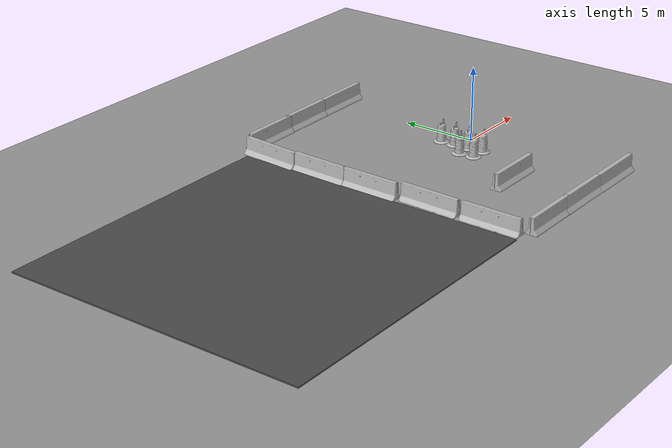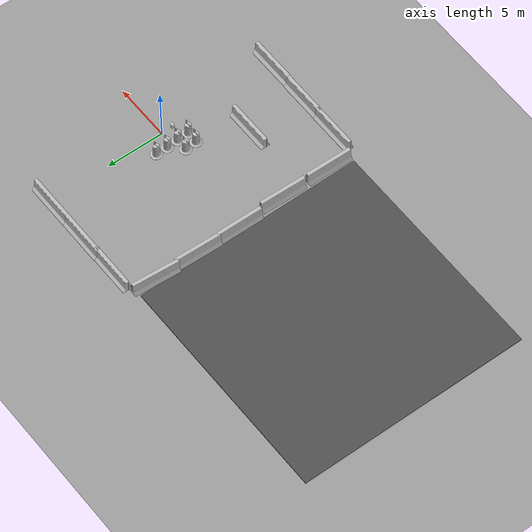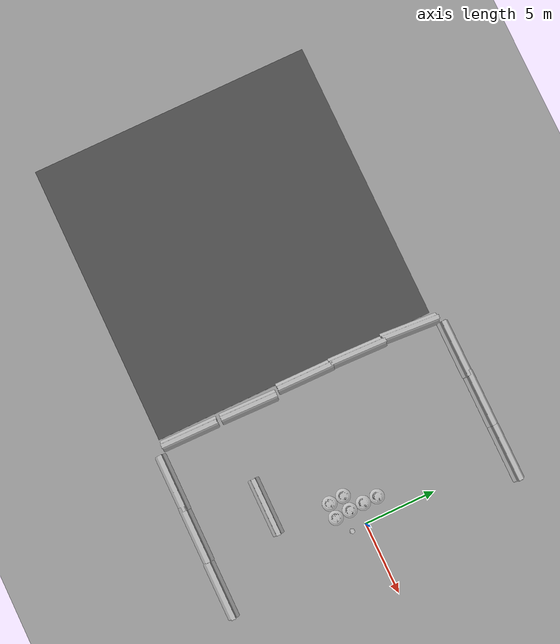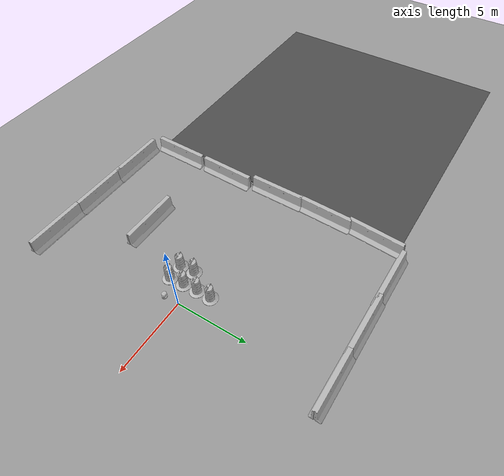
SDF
<sdf version="1.4">
 <world name="default">
  <model name="mobile_base">
   <link name="base_footprint">
    <inertial>
     <pose>-0.00949586 1.25983e-05 0.135573 0 -0 0</pose>
     <mass>4.9213</mass>
     <inertia>
      <ixx>0.142129</ixx>
      <ixy>-4.09257e-06</ixy>
      <ixz>0.0154899</ixz>
      <iyy>0.140784</iyy>
      <iyz>6.52071e-06</iyz>
      <izz>0.0801071</izz>
     </inertia>
    </inertial>
    <collision name="base_footprint_collision_base_link">
     <pose>0 0 0.06969 0 -0 0</pose>
     <geometry><cylinder><length>0.10938</length><radius>0.178</radius></cylinder></geometry>
     <surface><friction><ode><mu>0.3</mu><mu2>0.3</mu2></ode></friction></surface>
    </collision>
    <collision name="base_footprint_collision_camera_link">
     <pose>-0.118 0 0.2812 0 -0 0</pose>
     <geometry><box><size>0.07271 0.27794 0.073</size></box></geometry>
    </collision>
    <collision name="base_footprint_collision_caster_back_link">
     <pose>-0.135 0 0.0192 -1.5708 0 0</pose>
     <geometry><cylinder><length>0.0176</length><radius>0.017</radius></cylinder></geometry>
     <surface>
      <contact><ode><kp>1e+06</kp><kd>100</kd><max_vel>1</max_vel><min_depth>0.001</min_depth></ode></contact>
      <friction><ode><mu>0</mu><mu2>0</mu2></ode></friction>
     </surface>
    </collision>
    <collision name="base_footprint_collision_caster_front_link">
     <pose>0.115 0 0.0172 -1.5708 0 0</pose>
     <geometry><cylinder><length>0.0176</length><radius>0.017</radius></cylinder></geometry>
     <surface>
      <contact><ode><kp>1e+06</kp><kd>100</kd><max_vel>1</max_vel><min_depth>0.001</min_depth></ode></contact>
      <friction><ode><mu>0</mu><mu2>0</mu2></ode></friction>
     </surface>
    </collision>
    <collision name="base_footprint_collision_plate_bottom_link">
     <pose>0 0 0.1408 0 -0 0</pose>
     <geometry><cylinder><length>0.006</length><radius>0.17</radius></cylinder></geometry>
    </collision>
    <collision name="base_footprint_collision_plate_middle_link">
     <pose>0 0 0.1976 0 -0 0</pose>
     <geometry><cylinder><length>0.006</length><radius>0.17</radius></cylinder></geometry>
    </collision>
    <collision name="base_footprint_collision_plate_top_link">
     <pose>0 0 0.4068 0 -0 0</pose>
     <geometry><cylinder><length>0.006</length><radius>0.17</radius></cylinder></geometry>
    </collision>
    <collision name="base_footprint_collision_pole_bottom_0_link">
     <pose>0.12 0.082 0.113 0 -0 0</pose>
     <geometry><cylinder><length>0.0492</length><radius>0.006</radius></cylinder></geometry>
    </collision>
    <collision name="base_footprint_collision_pole_bottom_1_link">
     <pose>0.055 0.12 0.113 0 -0 0</pose>
     <geometry><cylinder><length>0.0492</length><radius>0.006</radius></cylinder></geometry>
    </collision>
    <collision name="base_footprint_collision_pole_bottom_2_link">
     <pose>-0.055 0.12 0.113 0 -0 0</pose>
     <geometry><cylinder><length>0.0492</length><radius>0.006</radius></cylinder></geometry>
    </collision>
    <collision name="base_footprint_collision_pole_bottom_3_link">
     <pose>0.12 -0.082 0.113 0 -0 0</pose>
     <geometry><cylinder><length>0.0492</length><radius>0.006</radius></cylinder></geometry>
    </collision>
    <collision name="base_footprint_collision_pole_bottom_4_link">
     <pose>0.055 -0.12 0.113 0 -0 0</pose>
     <geometry><cylinder><length>0.0492</length><radius>0.006</radius></cylinder></geometry>
    </collision>
    <collision name="base_footprint_collision_pole_bottom_5_link">
     <pose>-0.055 -0.12 0.113 0 -0 0</pose>
     <geometry><cylinder><length>0.0492</length><radius>0.006</radius></cylinder></geometry>
    </collision>
    <collision name="base_footprint_collision_pole_kinect_0_link">
     <pose>-0.1024 0.098 0.2474 0 -0 0</pose>
     <geometry><cylinder><length>0.0936</length><radius>0.006</radius></cylinder></geometry>
    </collision>
    <collision name="base_footprint_collision_pole_kinect_1_link">
     <pose>-0.1024 -0.098 0.2474 0 -0 0</pose>
     <geometry><cylinder><length>0.0936</length><radius>0.006</radius></cylinder></geometry>
    </collision>
    <collision name="base_footprint_collision_pole_middle_0_link">
     <pose>0.0381 0.1505 0.1742 0 -0 0</pose>
     <geometry><cylinder><length>0.0608</length><radius>0.006</radius></cylinder></geometry>
    </collision>
    <collision name="base_footprint_collision_pole_middle_1_link">
     <pose>0.0381 -0.1505 0.1742 0 -0 0</pose>
     <geometry><cylinder><length>0.0608</length><radius>0.006</radius></cylinder></geometry>
    </collision>
    <collision name="base_footprint_collision_pole_middle_2_link">
     <pose>-0.0381 0.1505 0.1742 0 -0 0</pose>
     <geometry><cylinder><length>0.0608</length><radius>0.006</radius></cylinder></geometry>
    </collision>
    <collision name="base_footprint_collision_pole_middle_3_link">
     <pose>-0.0381 -0.1505 0.1742 0 -0 0</pose>
     <geometry><cylinder><length>0.0608</length><radius>0.006</radius></cylinder></geometry>
    </collision>
    <collision name="base_footprint_collision_pole_top_0_link">
     <pose>0.0381 0.1505 0.3022 0 -0 0</pose>
     <geometry><cylinder><length>0.2032</length><radius>0.006</radius></cylinder></geometry>
    </collision>
    <collision name="base_footprint_collision_pole_top_1_link">
     <pose>0.0381 -0.1505 0.3022 0 -0 0</pose>
     <geometry><cylinder><length>0.2032</length><radius>0.006</radius></cylinder></geometry>
    </collision>
    <collision name="base_footprint_collision_pole_top_2_link">
     <pose>-0.0381 0.1505 0.3022 0 -0 0</pose>
     <geometry><cylinder><length>0.2032</length><radius>0.006</radius></cylinder></geometry>
    </collision>
    <collision name="base_footprint_collision_pole_top_3_link">
     <pose>-0.0381 -0.1505 0.3022 0 -0 0</pose>
     <geometry><cylinder><length>0.2032</length><radius>0.006</radius></cylinder></geometry>
    </collision>
    <visual name="base_footprint_visual_base_link">
     <pose>0.001 0 0.06219 0 -0 0</pose>
     <geometry>
      <mesh><scale>1 1 1</scale><uri>/opt/ros/indigo/share/kobuki_description/meshes/main_body.dae</uri></mesh>
     </geometry>
    </visual>
    <visual name="base_footprint_visual_camera_link">
     <pose>-0.118 0 0.2812 0 -0 1.5708</pose>
     <geometry>
      <mesh>
       <scale>1 1 1</scale>
       <uri>/opt/ros/indigo/share/turtlebot_description/meshes/sensors/kinect.dae</uri>
      </mesh>
     </geometry>
    </visual>
    <visual name="base_footprint_visual_plate_bottom_link">
     <pose>0.02364 0 0.1408 0 -0 0</pose>
     <geometry>
      <mesh>
       <scale>1 1 1</scale>
       <uri>/opt/ros/indigo/share/turtlebot_description/meshes/stacks/hexagons/plate_bottom.dae</uri>
      </mesh>
     </geometry>
    </visual>
    <visual name="base_footprint_visual_plate_middle_link">
     <pose>-0.01364 0 0.1976 0 -0 0</pose>
     <geometry>
      <mesh>
       <scale>1 1 1</scale>
       <uri>/opt/ros/indigo/share/turtlebot_description/meshes/stacks/hexagons/plate_middle.dae</uri>
      </mesh>
     </geometry>
    </visual>
    <visual name="base_footprint_visual_plate_top_link">
     <pose>-0.01364 0 0.4068 0 -0 0</pose>
     <geometry>
      <mesh>
       <scale>1 1 1</scale>
       <uri>/opt/ros/indigo/share/turtlebot_description/meshes/stacks/hexagons/plate_top.dae</uri>
      </mesh>
     </geometry>
    </visual>
    <visual name="base_footprint_visual_pole_bottom_0_link">
     <pose>0.12 0.082 0.113 0 -0 0</pose>
     <geometry>
      <mesh>
       <scale>1 1 1</scale>
       <uri>/opt/ros/indigo/share/turtlebot_description/meshes/stacks/hexagons/pole_bottom.dae</uri>
      </mesh>
     </geometry>
    </visual>
    <visual name="base_footprint_visual_pole_bottom_1_link">
     <pose>0.055 0.12 0.113 0 -0 0</pose>
     <geometry>
      <mesh>
       <scale>1 1 1</scale>
       <uri>/opt/ros/indigo/share/turtlebot_description/meshes/stacks/hexagons/pole_bottom.dae</uri>
      </mesh>
     </geometry>
    </visual>
    <visual name="base_footprint_visual_pole_bottom_2_link">
     <pose>-0.055 0.12 0.113 0 -0 0</pose>
     <geometry>
      <mesh>
       <scale>1 1 1</scale>
       <uri>/opt/ros/indigo/share/turtlebot_description/meshes/stacks/hexagons/pole_bottom.dae</uri>
      </mesh>
     </geometry>
    </visual>
    <visual name="base_footprint_visual_pole_bottom_3_link">
     <pose>0.12 -0.082 0.113 0 -0 0</pose>
     <geometry>
      <mesh>
       <scale>1 1 1</scale>
       <uri>/opt/ros/indigo/share/turtlebot_description/meshes/stacks/hexagons/pole_bottom.dae</uri>
      </mesh>
     </geometry>
    </visual>
    <visual name="base_footprint_visual_pole_bottom_4_link">
     <pose>0.055 -0.12 0.113 0 -0 0</pose>
     <geometry>
      <mesh>
       <scale>1 1 1</scale>
       <uri>/opt/ros/indigo/share/turtlebot_description/meshes/stacks/hexagons/pole_bottom.dae</uri>
      </mesh>
     </geometry>
    </visual>
    <visual name="base_footprint_visual_pole_bottom_5_link">
     <pose>-0.055 -0.12 0.113 0 -0 0</pose>
     <geometry>
      <mesh>
       <scale>1 1 1</scale>
       <uri>/opt/ros/indigo/share/turtlebot_description/meshes/stacks/hexagons/pole_bottom.dae</uri>
      </mesh>
     </geometry>
    </visual>
    <visual name="base_footprint_visual_pole_kinect_0_link">
     <pose>-0.1024 0.098 0.2374 0 -0 0</pose>
     <geometry>
      <mesh>
       <scale>1 1 1</scale>
       <uri>/opt/ros/indigo/share/turtlebot_description/meshes/sensors/sensor_pole.dae</uri>
      </mesh>
     </geometry>
    </visual>
    <visual name="base_footprint_visual_pole_kinect_1_link">
     <pose>-0.1024 -0.098 0.2374 0 -0 0</pose>
     <geometry>
      <mesh>
       <scale>1 1 1</scale>
       <uri>/opt/ros/indigo/share/turtlebot_description/meshes/sensors/sensor_pole.dae</uri>
      </mesh>
     </geometry>
    </visual>
    <visual name="base_footprint_visual_pole_middle_0_link">
     <pose>0.0381 0.1505 0.1742 3.14159 -2.06823e-13 3.14159</pose>
     <geometry>
      <mesh>
       <scale>1 1 1</scale>
       <uri>/opt/ros/indigo/share/turtlebot_description/meshes/stacks/hexagons/pole_middle.dae</uri>
      </mesh>
     </geometry>
    </visual>
    <visual name="base_footprint_visual_pole_middle_1_link">
     <pose>0.0381 -0.1505 0.1742 3.14159 -2.06823e-13 3.14159</pose>
     <geometry>
      <mesh>
       <scale>1 1 1</scale>
       <uri>/opt/ros/indigo/share/turtlebot_description/meshes/stacks/hexagons/pole_middle.dae</uri>
      </mesh>
     </geometry>
    </visual>
    <visual name="base_footprint_visual_pole_middle_2_link">
     <pose>-0.0381 0.1505 0.1742 3.14159 -2.06823e-13 3.14159</pose>
     <geometry>
      <mesh>
       <scale>1 1 1</scale>
       <uri>/opt/ros/indigo/share/turtlebot_description/meshes/stacks/hexagons/pole_middle.dae</uri>
      </mesh>
     </geometry>
    </visual>
    <visual name="base_footprint_visual_pole_middle_3_link">
     <pose>-0.0381 -0.1505 0.1742 3.14159 -2.06823e-13 3.14159</pose>
     <geometry>
      <mesh>
       <scale>1 1 1</scale>
       <uri>/opt/ros/indigo/share/turtlebot_description/meshes/stacks/hexagons/pole_middle.dae</uri>
      </mesh>
     </geometry>
    </visual>
    <visual name="base_footprint_visual_pole_top_0_link">
     <pose>0.0381 0.1505 0.3022 0 -0 0</pose>
     <geometry>
      <mesh>
       <scale>1 1 1</scale>
       <uri>/opt/ros/indigo/share/turtlebot_description/meshes/stacks/hexagons/pole_top.dae</uri>
      </mesh>
     </geometry>
    </visual>
    <visual name="base_footprint_visual_pole_top_1_link">
     <pose>0.0381 -0.1505 0.3022 0 -0 0</pose>
     <geometry>
      <mesh>
       <scale>1 1 1</scale>
       <uri>/opt/ros/indigo/share/turtlebot_description/meshes/stacks/hexagons/pole_top.dae</uri>
      </mesh>
     </geometry>
    </visual>
    <visual name="base_footprint_visual_pole_top_2_link">
     <pose>-0.0381 0.1505 0.3022 0 -0 0</pose>
     <geometry>
      <mesh>
       <scale>1 1 1</scale>
       <uri>/opt/ros/indigo/share/turtlebot_description/meshes/stacks/hexagons/pole_top.dae</uri>
      </mesh>
     </geometry>
    </visual>
    <visual name="base_footprint_visual_pole_top_3_link">
     <pose>-0.0381 -0.1505 0.3022 0 -0 0</pose>
     <geometry>
      <mesh>
       <scale>1 1 1</scale>
       <uri>/opt/ros/indigo/share/turtlebot_description/meshes/stacks/hexagons/pole_top.dae</uri>
      </mesh>
     </geometry>
    </visual>
    <velocity_decay><linear>0</linear><angular>0</angular></velocity_decay>
    <sensor name="bumpers" type="contact">
     <always_on>1</always_on>
     <update_rate>50</update_rate>
     <visualize>1</visualize>
     <contact><collision>base_footprint_collision_base_link</collision><topic>__default_topic__</topic></contact>
     <pose>0 0 0.0102 0 -0 0</pose>
    </sensor>
    <velocity_decay><linear>0</linear><angular>0</angular></velocity_decay>
    <sensor name="camera" type="depth">
     <always_on>1</always_on>
     <update_rate>20</update_rate>
     <camera name="__default__">
      <horizontal_fov>1.0472</horizontal_fov>
      <image><format>R8G8B8</format><width>640</width><height>480</height></image>
      <clip><near>0.05</near><far>8</far></clip>
     </camera>
     <plugin name="kinect_camera_controller" filename="libgazebo_ros_openni_kinect.so">
      <cameraName>camera</cameraName>
      <alwaysOn>true</alwaysOn>
      <updateRate>10</updateRate>
      <imageTopicName>rgb/image_raw</imageTopicName>
      <depthImageTopicName>depth/image_raw</depthImageTopicName>
      <pointCloudTopicName>depth/points</pointCloudTopicName>
      <cameraInfoTopicName>rgb/camera_info</cameraInfoTopicName>
      <depthImageCameraInfoTopicName>depth/camera_info</depthImageCameraInfoTopicName>
      <frameName>camera_depth_optical_frame</frameName>
      <baseline>0.1</baseline>
      <distortion_k1>0.0</distortion_k1>
      <distortion_k2>0.0</distortion_k2>
      <distortion_k3>0.0</distortion_k3>
      <distortion_t1>0.0</distortion_t1>
      <distortion_t2>0.0</distortion_t2>
      <pointCloudCutoff>0.4</pointCloudCutoff>
      <robotNamespace>/</robotNamespace>
     </plugin>
     <pose>-0.118 0 0.2812 0 -0 0</pose>
    </sensor>
    <velocity_decay><linear>0</linear><angular>0</angular></velocity_decay>
    <velocity_decay><linear>0</linear><angular>0</angular></velocity_decay>
    <velocity_decay><linear>0</linear><angular>0</angular></velocity_decay>
    <sensor name="cliff_sensor_front" type="ray">
     <always_on>1</always_on>
     <update_rate>50</update_rate>
     <visualize>1</visualize>
     <ray>
      <scan>
       <horizontal>
        <samples>50</samples>
        <resolution>1</resolution>
        <min_angle>-0.0436</min_angle>
        <max_angle>0.0436</max_angle>
       </horizontal>
      </scan>
      <range><min>0.01</min><max>0.15</max><resolution>1</resolution></range>
     </ray>
     <pose>0.156 0 0.0316 3.14159 1.57079 3.14159</pose>
    </sensor>
    <velocity_decay><linear>0</linear><angular>0</angular></velocity_decay>
    <sensor name="cliff_sensor_left" type="ray">
     <always_on>1</always_on>
     <update_rate>50</update_rate>
     <visualize>1</visualize>
     <ray>
      <scan>
       <horizontal>
        <samples>50</samples>
        <resolution>1</resolution>
        <min_angle>-0.0436</min_angle>
        <max_angle>0.0436</max_angle>
       </horizontal>
      </scan>
      <range><min>0.01</min><max>0.15</max><resolution>1</resolution></range>
     </ray>
     <pose>0.08734 0.13601 0.0316 3.14159 1.57079 3.14159</pose>
    </sensor>
    <velocity_decay><linear>0</linear><angular>0</angular></velocity_decay>
    <sensor name="cliff_sensor_right" type="ray">
     <always_on>1</always_on>
     <update_rate>50</update_rate>
     <visualize>1</visualize>
     <ray>
      <scan>
       <horizontal>
        <samples>50</samples>
        <resolution>1</resolution>
        <min_angle>-0.0436</min_angle>
        <max_angle>0.0436</max_angle>
       </horizontal>
      </scan>
      <range><min>0.01</min><max>0.15</max><resolution>1</resolution></range>
     </ray>
     <pose>0.085 -0.13601 0.0316 3.14159 1.57079 3.14159</pose>
    </sensor>
    <velocity_decay><linear>0</linear><angular>0</angular></velocity_decay>
    <sensor name="imu" type="imu">
     <always_on>1</always_on>
     <update_rate>50</update_rate>
     <visualize>0</visualize>
     <imu>
      <noise>
       <type>gaussian</type>
       <rate><mean>0</mean><stddev>1.96e-06</stddev><bias_mean>0</bias_mean><bias_stddev>0</bias_stddev></rate>
       <accel><mean>0</mean><stddev>0.017</stddev><bias_mean>0.1</bias_mean><bias_stddev>0.001</bias_stddev></accel>
      </noise>
     </imu>
     <pose>0.056 0.062 0.0304 0 -0 0</pose>
    </sensor>
   </link>
   <link name="wheel_left_link">
    <pose>0 0.115 0.0352 -1.5708 0 0</pose>
    <inertial>
     <mass>0.01</mass>
     <inertia><ixx>0.001</ixx><ixy>0</ixy><ixz>0</ixz><iyy>0.001</iyy><iyz>0</iyz><izz>0.001</izz></inertia>
    </inertial>
    <collision name="wheel_left_link_collision">
     <geometry><cylinder><length>0.0206</length><radius>0.0352</radius></cylinder></geometry>
     <surface>
      <contact><ode><kp>1e+06</kp><kd>100</kd><max_vel>1</max_vel><min_depth>0.001</min_depth></ode></contact>
      <friction><ode><mu>1</mu><mu2>1</mu2></ode></friction>
     </surface>
    </collision>
    <visual name="wheel_left_link_visual">
     <geometry>
      <mesh><scale>1 1 1</scale><uri>/opt/ros/indigo/share/kobuki_description/meshes/wheel.dae</uri></mesh>
     </geometry>
    </visual>
    <velocity_decay><linear>0</linear><angular>0</angular></velocity_decay>
   </link>
   <joint name="wheel_left_joint" type="revolute">
    <child>wheel_left_link</child>
    <parent>base_footprint</parent>
    <axis><xyz>0 1 0</xyz><limit><lower>-1e+16</lower><upper>1e+16</upper></limit></axis>
   </joint>
   <link name="wheel_right_link">
    <pose>0 -0.115 0.0352 -1.5708 0 0</pose>
    <inertial>
     <mass>0.01</mass>
     <inertia><ixx>0.001</ixx><ixy>0</ixy><ixz>0</ixz><iyy>0.001</iyy><iyz>0</iyz><izz>0.001</izz></inertia>
    </inertial>
    <collision name="wheel_right_link_collision">
     <geometry><cylinder><length>0.0206</length><radius>0.035</radius></cylinder></geometry>
     <surface>
      <contact><ode><kp>1e+06</kp><kd>100</kd><max_vel>1</max_vel><min_depth>0.001</min_depth></ode></contact>
      <friction><ode><mu>1</mu><mu2>1</mu2></ode></friction>
     </surface>
    </collision>
    <visual name="wheel_right_link_visual">
     <geometry>
      <mesh><scale>1 1 1</scale><uri>/opt/ros/indigo/share/kobuki_description/meshes/wheel.dae</uri></mesh>
     </geometry>
    </visual>
    <velocity_decay><linear>0</linear><angular>0</angular></velocity_decay>
   </link>
   <joint name="wheel_right_joint" type="revolute">
    <child>wheel_right_link</child>
    <parent>base_footprint</parent>
    <axis><xyz>0 1 0</xyz><limit><lower>-1e+16</lower><upper>1e+16</upper></limit></axis>
   </joint>
   <static>0</static>
   <plugin name="kobuki_controller" filename="libgazebo_ros_kobuki.so">
    <publish_tf>1</publish_tf>
    <left_wheel_joint_name>wheel_left_joint</left_wheel_joint_name>
    <right_wheel_joint_name>wheel_right_joint</right_wheel_joint_name>
    <wheel_separation>.230</wheel_separation>
    <wheel_diameter>0.070</wheel_diameter>
    <torque>1.0</torque>
    <velocity_command_timeout>0.6</velocity_command_timeout>
    <cliff_sensor_left_name>cliff_sensor_left</cliff_sensor_left_name>
    <cliff_sensor_center_name>cliff_sensor_front</cliff_sensor_center_name>
    <cliff_sensor_right_name>cliff_sensor_right</cliff_sensor_right_name>
    <cliff_detection_threshold>0.04</cliff_detection_threshold>
    <bumper_name>bumpers</bumper_name>
    <imu_name>imu</imu_name>
    <robotNamespace>/</robotNamespace>
   </plugin>
   <pose>0.037756 -1.03166 -0.001131 4.1e-05 -0.008002 -1.65563</pose>
  </model>
  <model name="asphalt_plane">
   <static>1</static>
   <link name="link">
    <collision name="collision"><geometry><box><size>20 20 0.1</size></box></geometry></collision>
    <visual name="visual">
     <cast_shadows>0</cast_shadows>
     <geometry><box><size>20 20 0.1</size></box></geometry>
     <material>
      <script>
       <uri>model://asphalt_plane/materials/scripts</uri>
       <uri>model://asphalt_plane/materials/textures</uri>
       <name>vrc/asphalt</name>
      </script>
     </material>
    </visual>
    <velocity_decay><linear>0</linear><angular>0</angular></velocity_decay>
   </link>
   <pose>-20.8561 -0.082108 0 0 -0 0</pose>
  </model>
  <model name="ground_plane_0">
   <static>1</static>
   <link name="link">
    <collision name="collision">
     <geometry><plane><normal>0 0 1</normal><size>100 100</size></plane></geometry>
     <surface><friction><ode><mu>100</mu><mu2>50</mu2></ode></friction></surface>
    </collision>
    <visual name="visual">
     <cast_shadows>0</cast_shadows>
     <geometry><plane><normal>0 0 1</normal><size>100 100</size></plane></geometry>
     <material>
      <script><uri>file://media/materials/scripts/gazebo.material</uri><name>Gazebo/Grey</name></script>
     </material>
    </visual>
    <velocity_decay><linear>0</linear><angular>0</angular></velocity_decay>
   </link>
   <pose>-12 -1 0 0 -0 0</pose>
  </model>
  <model name="jersey_barrier">
   <static>1</static>
   <link name="link">
    <visual name="visual">
     <geometry><mesh><uri>model://jersey_barrier/meshes/jersey_barrier.dae</uri></mesh></geometry>
    </visual>
    <collision name="upright">
     <pose>0 0 0.5715 0 -0 0</pose>
     <geometry><box><size>4.06542 0.3063 1.143</size></box></geometry>
    </collision>
    <collision name="base">
     <pose>0 0 0.032258 0 -0 0</pose>
     <geometry><box><size>4.06542 0.8107 0.064516</size></box></geometry>
    </collision>
    <collision name="base2">
     <pose>0 0 0.1 0 -0 0</pose>
     <geometry><box><size>4.06542 0.65 0.1</size></box></geometry>
    </collision>
    <collision name="base3">
     <pose>0 0 0.2 0 -0 0</pose>
     <geometry><box><size>4.06542 0.5 0.1</size></box></geometry>
    </collision>
    <collision name="left-angle">
     <pose>0 -0.224 0.2401 0.9 -0 0</pose>
     <geometry><box><size>4.06542 0.5 0.064516</size></box></geometry>
    </collision>
    <collision name="right-angle">
     <pose>0 0.224 0.2401 -0.9 0 0</pose>
     <geometry><box><size>4.06542 0.5 0.064516</size></box></geometry>
    </collision>
    <velocity_decay><linear>0</linear><angular>0</angular></velocity_decay>
   </link>
   <pose>-0.151426 -10.4913 0 0 -0 0</pose>
  </model>
  <model name="jersey_barrier_0">
   <static>1</static>
   <link name="link">
    <visual name="visual">
     <geometry><mesh><uri>model://jersey_barrier/meshes/jersey_barrier.dae</uri></mesh></geometry>
    </visual>
    <collision name="upright">
     <pose>0 0 0.5715 0 -0 0</pose>
     <geometry><box><size>4.06542 0.3063 1.143</size></box></geometry>
    </collision>
    <collision name="base">
     <pose>0 0 0.032258 0 -0 0</pose>
     <geometry><box><size>4.06542 0.8107 0.064516</size></box></geometry>
    </collision>
    <collision name="base2">
     <pose>0 0 0.1 0 -0 0</pose>
     <geometry><box><size>4.06542 0.65 0.1</size></box></geometry>
    </collision>
    <collision name="base3">
     <pose>0 0 0.2 0 -0 0</pose>
     <geometry><box><size>4.06542 0.5 0.1</size></box></geometry>
    </collision>
    <collision name="left-angle">
     <pose>0 -0.224 0.2401 0.9 -0 0</pose>
     <geometry><box><size>4.06542 0.5 0.064516</size></box></geometry>
    </collision>
    <collision name="right-angle">
     <pose>0 0.224 0.2401 -0.9 0 0</pose>
     <geometry><box><size>4.06542 0.5 0.064516</size></box></geometry>
    </collision>
    <velocity_decay><linear>0</linear><angular>0</angular></velocity_decay>
   </link>
   <pose>-7.87258 -10.4328 0 0 -0 0</pose>
  </model>
  <model name="jersey_barrier_1">
   <static>1</static>
   <link name="link">
    <visual name="visual">
     <geometry><mesh><uri>model://jersey_barrier/meshes/jersey_barrier.dae</uri></mesh></geometry>
    </visual>
    <collision name="upright">
     <pose>0 0 0.5715 0 -0 0</pose>
     <geometry><box><size>4.06542 0.3063 1.143</size></box></geometry>
    </collision>
    <collision name="base">
     <pose>0 0 0.032258 0 -0 0</pose>
     <geometry><box><size>4.06542 0.8107 0.064516</size></box></geometry>
    </collision>
    <collision name="base2">
     <pose>0 0 0.1 0 -0 0</pose>
     <geometry><box><size>4.06542 0.65 0.1</size></box></geometry>
    </collision>
    <collision name="base3">
     <pose>0 0 0.2 0 -0 0</pose>
     <geometry><box><size>4.06542 0.5 0.1</size></box></geometry>
    </collision>
    <collision name="left-angle">
     <pose>0 -0.224 0.2401 0.9 -0 0</pose>
     <geometry><box><size>4.06542 0.5 0.064516</size></box></geometry>
    </collision>
    <collision name="right-angle">
     <pose>0 0.224 0.2401 -0.9 0 0</pose>
     <geometry><box><size>4.06542 0.5 0.064516</size></box></geometry>
    </collision>
    <velocity_decay><linear>0</linear><angular>0</angular></velocity_decay>
   </link>
   <pose>-4.18041 -10.4529 0 0 -0 0</pose>
  </model>
  <model name="jersey_barrier_5">
   <static>1</static>
   <link name="link">
    <visual name="visual">
     <geometry><mesh><uri>model://jersey_barrier/meshes/jersey_barrier.dae</uri></mesh></geometry>
    </visual>
    <collision name="upright">
     <pose>0 0 0.5715 0 -0 0</pose>
     <geometry><box><size>4.06542 0.3063 1.143</size></box></geometry>
    </collision>
    <collision name="base">
     <pose>0 0 0.032258 0 -0 0</pose>
     <geometry><box><size>4.06542 0.8107 0.064516</size></box></geometry>
    </collision>
    <collision name="base2">
     <pose>0 0 0.1 0 -0 0</pose>
     <geometry><box><size>4.06542 0.65 0.1</size></box></geometry>
    </collision>
    <collision name="base3">
     <pose>0 0 0.2 0 -0 0</pose>
     <geometry><box><size>4.06542 0.5 0.1</size></box></geometry>
    </collision>
    <collision name="left-angle">
     <pose>0 -0.224 0.2401 0.9 -0 0</pose>
     <geometry><box><size>4.06542 0.5 0.064516</size></box></geometry>
    </collision>
    <collision name="right-angle">
     <pose>0 0.224 0.2401 -0.9 0 0</pose>
     <geometry><box><size>4.06542 0.5 0.064516</size></box></geometry>
    </collision>
    <velocity_decay><linear>0</linear><angular>0</angular></velocity_decay>
   </link>
   <pose>-4.26904 10.4439 0 0 -0 0</pose>
  </model>
  <model name="jersey_barrier_7">
   <static>1</static>
   <link name="link">
    <visual name="visual">
     <geometry><mesh><uri>model://jersey_barrier/meshes/jersey_barrier.dae</uri></mesh></geometry>
    </visual>
    <collision name="upright">
     <pose>0 0 0.5715 0 -0 0</pose>
     <geometry><box><size>4.06542 0.3063 1.143</size></box></geometry>
    </collision>
    <collision name="base">
     <pose>0 0 0.032258 0 -0 0</pose>
     <geometry><box><size>4.06542 0.8107 0.064516</size></box></geometry>
    </collision>
    <collision name="base2">
     <pose>0 0 0.1 0 -0 0</pose>
     <geometry><box><size>4.06542 0.65 0.1</size></box></geometry>
    </collision>
    <collision name="base3">
     <pose>0 0 0.2 0 -0 0</pose>
     <geometry><box><size>4.06542 0.5 0.1</size></box></geometry>
    </collision>
    <collision name="left-angle">
     <pose>0 -0.224 0.2401 0.9 -0 0</pose>
     <geometry><box><size>4.06542 0.5 0.064516</size></box></geometry>
    </collision>
    <collision name="right-angle">
     <pose>0 0.224 0.2401 -0.9 0 0</pose>
     <geometry><box><size>4.06542 0.5 0.064516</size></box></geometry>
    </collision>
    <velocity_decay><linear>0</linear><angular>0</angular></velocity_decay>
   </link>
   <pose>-7.92273 10.4051 0 0 -0 0</pose>
  </model>
  <model name="jersey_barrier_8">
   <static>1</static>
   <link name="link">
    <visual name="visual">
     <geometry><mesh><uri>model://jersey_barrier/meshes/jersey_barrier.dae</uri></mesh></geometry>
    </visual>
    <collision name="upright">
     <pose>0 0 0.5715 0 -0 0</pose>
     <geometry><box><size>4.06542 0.3063 1.143</size></box></geometry>
    </collision>
    <collision name="base">
     <pose>0 0 0.032258 0 -0 0</pose>
     <geometry><box><size>4.06542 0.8107 0.064516</size></box></geometry>
    </collision>
    <collision name="base2">
     <pose>0 0 0.1 0 -0 0</pose>
     <geometry><box><size>4.06542 0.65 0.1</size></box></geometry>
    </collision>
    <collision name="base3">
     <pose>0 0 0.2 0 -0 0</pose>
     <geometry><box><size>4.06542 0.5 0.1</size></box></geometry>
    </collision>
    <collision name="left-angle">
     <pose>0 -0.224 0.2401 0.9 -0 0</pose>
     <geometry><box><size>4.06542 0.5 0.064516</size></box></geometry>
    </collision>
    <collision name="right-angle">
     <pose>0 0.224 0.2401 -0.9 0 0</pose>
     <geometry><box><size>4.06542 0.5 0.064516</size></box></geometry>
    </collision>
    <velocity_decay><linear>0</linear><angular>0</angular></velocity_decay>
   </link>
   <pose>-0.288683 10.4513 0 0 -0 0</pose>
  </model>
  <model name="jersey_barrier_14">
   <static>1</static>
   <link name="link">
    <visual name="visual">
     <geometry><mesh><uri>model://jersey_barrier/meshes/jersey_barrier.dae</uri></mesh></geometry>
    </visual>
    <collision name="upright">
     <pose>0 0 0.5715 0 -0 0</pose>
     <geometry><box><size>4.06542 0.3063 1.143</size></box></geometry>
    </collision>
    <collision name="base">
     <pose>0 0 0.032258 0 -0 0</pose>
     <geometry><box><size>4.06542 0.8107 0.064516</size></box></geometry>
    </collision>
    <collision name="base2">
     <pose>0 0 0.1 0 -0 0</pose>
     <geometry><box><size>4.06542 0.65 0.1</size></box></geometry>
    </collision>
    <collision name="base3">
     <pose>0 0 0.2 0 -0 0</pose>
     <geometry><box><size>4.06542 0.5 0.1</size></box></geometry>
    </collision>
    <collision name="left-angle">
     <pose>0 -0.224 0.2401 0.9 -0 0</pose>
     <geometry><box><size>4.06542 0.5 0.064516</size></box></geometry>
    </collision>
    <collision name="right-angle">
     <pose>0 0.224 0.2401 -0.9 0 0</pose>
     <geometry><box><size>4.06542 0.5 0.064516</size></box></geometry>
    </collision>
    <velocity_decay><linear>0</linear><angular>0</angular></velocity_decay>
   </link>
   <pose>-10.3383 -8.04254 0 0 0 -1.58387</pose>
  </model>
  <model name="jersey_barrier_15">
   <static>1</static>
   <link name="link">
    <visual name="visual">
     <geometry><mesh><uri>model://jersey_barrier/meshes/jersey_barrier.dae</uri></mesh></geometry>
    </visual>
    <collision name="upright">
     <pose>0 0 0.5715 0 -0 0</pose>
     <geometry><box><size>4.06542 0.3063 1.143</size></box></geometry>
    </collision>
    <collision name="base">
     <pose>0 0 0.032258 0 -0 0</pose>
     <geometry><box><size>4.06542 0.8107 0.064516</size></box></geometry>
    </collision>
    <collision name="base2">
     <pose>0 0 0.1 0 -0 0</pose>
     <geometry><box><size>4.06542 0.65 0.1</size></box></geometry>
    </collision>
    <collision name="base3">
     <pose>0 0 0.2 0 -0 0</pose>
     <geometry><box><size>4.06542 0.5 0.1</size></box></geometry>
    </collision>
    <collision name="left-angle">
     <pose>0 -0.224 0.2401 0.9 -0 0</pose>
     <geometry><box><size>4.06542 0.5 0.064516</size></box></geometry>
    </collision>
    <collision name="right-angle">
     <pose>0 0.224 0.2401 -0.9 0 0</pose>
     <geometry><box><size>4.06542 0.5 0.064516</size></box></geometry>
    </collision>
    <velocity_decay><linear>0</linear><angular>0</angular></velocity_decay>
   </link>
   <pose>-10.285 -3.72988 0 0 0 -1.59477</pose>
  </model>
  <model name="jersey_barrier_16">
   <static>1</static>
   <link name="link">
    <visual name="visual">
     <geometry><mesh><uri>model://jersey_barrier/meshes/jersey_barrier.dae</uri></mesh></geometry>
    </visual>
    <collision name="upright">
     <pose>0 0 0.5715 0 -0 0</pose>
     <geometry><box><size>4.06542 0.3063 1.143</size></box></geometry>
    </collision>
    <collision name="base">
     <pose>0 0 0.032258 0 -0 0</pose>
     <geometry><box><size>4.06542 0.8107 0.064516</size></box></geometry>
    </collision>
    <collision name="base2">
     <pose>0 0 0.1 0 -0 0</pose>
     <geometry><box><size>4.06542 0.65 0.1</size></box></geometry>
    </collision>
    <collision name="base3">
     <pose>0 0 0.2 0 -0 0</pose>
     <geometry><box><size>4.06542 0.5 0.1</size></box></geometry>
    </collision>
    <collision name="left-angle">
     <pose>0 -0.224 0.2401 0.9 -0 0</pose>
     <geometry><box><size>4.06542 0.5 0.064516</size></box></geometry>
    </collision>
    <collision name="right-angle">
     <pose>0 0.224 0.2401 -0.9 0 0</pose>
     <geometry><box><size>4.06542 0.5 0.064516</size></box></geometry>
    </collision>
    <velocity_decay><linear>0</linear><angular>0</angular></velocity_decay>
   </link>
   <pose>-10.5011 4.38545 0 0 0 -1.6017</pose>
  </model>
  <model name="jersey_barrier_17">
   <static>1</static>
   <link name="link">
    <visual name="visual">
     <geometry><mesh><uri>model://jersey_barrier/meshes/jersey_barrier.dae</uri></mesh></geometry>
    </visual>
    <collision name="upright">
     <pose>0 0 0.5715 0 -0 0</pose>
     <geometry><box><size>4.06542 0.3063 1.143</size></box></geometry>
    </collision>
    <collision name="base">
     <pose>0 0 0.032258 0 -0 0</pose>
     <geometry><box><size>4.06542 0.8107 0.064516</size></box></geometry>
    </collision>
    <collision name="base2">
     <pose>0 0 0.1 0 -0 0</pose>
     <geometry><box><size>4.06542 0.65 0.1</size></box></geometry>
    </collision>
    <collision name="base3">
     <pose>0 0 0.2 0 -0 0</pose>
     <geometry><box><size>4.06542 0.5 0.1</size></box></geometry>
    </collision>
    <collision name="left-angle">
     <pose>0 -0.224 0.2401 0.9 -0 0</pose>
     <geometry><box><size>4.06542 0.5 0.064516</size></box></geometry>
    </collision>
    <collision name="right-angle">
     <pose>0 0.224 0.2401 -0.9 0 0</pose>
     <geometry><box><size>4.06542 0.5 0.064516</size></box></geometry>
    </collision>
    <velocity_decay><linear>0</linear><angular>0</angular></velocity_decay>
   </link>
   <pose>-10.5227 0.521891 0 0 0 -1.58002</pose>
  </model>
  <model name="jersey_barrier_18">
   <static>1</static>
   <link name="link">
    <visual name="visual">
     <geometry><mesh><uri>model://jersey_barrier/meshes/jersey_barrier.dae</uri></mesh></geometry>
    </visual>
    <collision name="upright">
     <pose>0 0 0.5715 0 -0 0</pose>
     <geometry><box><size>4.06542 0.3063 1.143</size></box></geometry>
    </collision>
    <collision name="base">
     <pose>0 0 0.032258 0 -0 0</pose>
     <geometry><box><size>4.06542 0.8107 0.064516</size></box></geometry>
    </collision>
    <collision name="base2">
     <pose>0 0 0.1 0 -0 0</pose>
     <geometry><box><size>4.06542 0.65 0.1</size></box></geometry>
    </collision>
    <collision name="base3">
     <pose>0 0 0.2 0 -0 0</pose>
     <geometry><box><size>4.06542 0.5 0.1</size></box></geometry>
    </collision>
    <collision name="left-angle">
     <pose>0 -0.224 0.2401 0.9 -0 0</pose>
     <geometry><box><size>4.06542 0.5 0.064516</size></box></geometry>
    </collision>
    <collision name="right-angle">
     <pose>0 0.224 0.2401 -0.9 0 0</pose>
     <geometry><box><size>4.06542 0.5 0.064516</size></box></geometry>
    </collision>
    <velocity_decay><linear>0</linear><angular>0</angular></velocity_decay>
   </link>
   <pose>-10.4477 8.24437 0 0 0 -1.63955</pose>
  </model>
  <model name="jersey_barrier_21">
   <static>1</static>
   <link name="link">
    <visual name="visual">
     <geometry><mesh><uri>model://jersey_barrier/meshes/jersey_barrier.dae</uri></mesh></geometry>
    </visual>
    <collision name="upright">
     <pose>0 0 0.5715 0 -0 0</pose>
     <geometry><box><size>4.06542 0.3063 1.143</size></box></geometry>
    </collision>
    <collision name="base">
     <pose>0 0 0.032258 0 -0 0</pose>
     <geometry><box><size>4.06542 0.8107 0.064516</size></box></geometry>
    </collision>
    <collision name="base2">
     <pose>0 0 0.1 0 -0 0</pose>
     <geometry><box><size>4.06542 0.65 0.1</size></box></geometry>
    </collision>
    <collision name="base3">
     <pose>0 0 0.2 0 -0 0</pose>
     <geometry><box><size>4.06542 0.5 0.1</size></box></geometry>
    </collision>
    <collision name="left-angle">
     <pose>0 -0.224 0.2401 0.9 -0 0</pose>
     <geometry><box><size>4.06542 0.5 0.064516</size></box></geometry>
    </collision>
    <collision name="right-angle">
     <pose>0 0.224 0.2401 -0.9 0 0</pose>
     <geometry><box><size>4.06542 0.5 0.064516</size></box></geometry>
    </collision>
    <velocity_decay><linear>0</linear><angular>0</angular></velocity_decay>
   </link>
   <pose>-3.8363 -5.50727 0 0 -0 0</pose>
  </model>
  <model name="Construction Barrel_2">
   <link name="link">
    <inertial>
     <pose>0 0 0.4 0 -0 0</pose>
     <mass>500</mass>
     <inertia><ixx>51.2096</ixx><iyy>51.2096</iyy><izz>25</izz><ixy>0</ixy><ixz>0</ixz><iyz>0</iyz></inertia>
    </inertial>
    <collision name="collision">
     <geometry><mesh><uri>model://construction_barrel/meshes/construction_barrel.dae</uri></mesh></geometry>
    </collision>
    <visual name="visual">
     <geometry><mesh><uri>model://construction_barrel/meshes/construction_barrel.dae</uri></mesh></geometry>
    </visual>
    <velocity_decay><linear>0</linear><angular>0</angular></velocity_decay>
   </link>
   <pose>-1.19433 -1.63233 -0.00017 -6.9e-05 -0.000543 -0.020659</pose>
   <static>0</static>
  </model>
  <model name="Construction Barrel_3">
   <link name="link">
    <inertial>
     <pose>0 0 0.4 0 -0 0</pose>
     <mass>500</mass>
     <inertia><ixx>51.2096</ixx><iyy>51.2096</iyy><izz>25</izz><ixy>0</ixy><ixz>0</ixz><iyz>0</iyz></inertia>
    </inertial>
    <collision name="collision">
     <geometry><mesh><uri>model://construction_barrel/meshes/construction_barrel.dae</uri></mesh></geometry>
    </collision>
    <visual name="visual">
     <geometry><mesh><uri>model://construction_barrel/meshes/construction_barrel.dae</uri></mesh></geometry>
    </visual>
    <velocity_decay><linear>0</linear><angular>0</angular></velocity_decay>
   </link>
   <pose>-2.2193 -1.60792 -9.1e-05 0.00031 0.000179 0.008854</pose>
   <static>0</static>
  </model>
  <model name="Construction Barrel_4">
   <link name="link">
    <inertial>
     <pose>0 0 0.4 0 -0 0</pose>
     <mass>500</mass>
     <inertia><ixx>51.2096</ixx><iyy>51.2096</iyy><izz>25</izz><ixy>0</ixy><ixz>0</ixz><iyz>0</iyz></inertia>
    </inertial>
    <collision name="collision">
     <geometry><mesh><uri>model://construction_barrel/meshes/construction_barrel.dae</uri></mesh></geometry>
    </collision>
    <visual name="visual">
     <geometry><mesh><uri>model://construction_barrel/meshes/construction_barrel.dae</uri></mesh></geometry>
    </visual>
    <velocity_decay><linear>0</linear><angular>0</angular></velocity_decay>
   </link>
   <pose>-2.2927 -0.583204 -0.00017 -6.8e-05 -0.000543 0.091795</pose>
   <static>0</static>
  </model>
  <model name="Construction Barrel_9">
   <link name="link">
    <inertial>
     <pose>0 0 0.4 0 -0 0</pose>
     <mass>500</mass>
     <inertia><ixx>51.2096</ixx><iyy>51.2096</iyy><izz>25</izz><ixy>0</ixy><ixz>0</ixz><iyz>0</iyz></inertia>
    </inertial>
    <collision name="collision">
     <geometry><mesh><uri>model://construction_barrel/meshes/construction_barrel.dae</uri></mesh></geometry>
    </collision>
    <visual name="visual">
     <geometry><mesh><uri>model://construction_barrel/meshes/construction_barrel.dae</uri></mesh></geometry>
    </visual>
    <velocity_decay><linear>0</linear><angular>0</angular></velocity_decay>
   </link>
   <pose>-1.25855 -0.586547 -9.1e-05 -9.2e-05 -0.000346 0.2234</pose>
   <static>0</static>
  </model>
  <model name="Construction Barrel_10">
   <link name="link">
    <inertial>
     <pose>0 0 0.4 0 -0 0</pose>
     <mass>500</mass>
     <inertia><ixx>51.2096</ixx><iyy>51.2096</iyy><izz>25</izz><ixy>0</ixy><ixz>0</ixz><iyz>0</iyz></inertia>
    </inertial>
    <collision name="collision">
     <geometry><mesh><uri>model://construction_barrel/meshes/construction_barrel.dae</uri></mesh></geometry>
    </collision>
    <visual name="visual">
     <geometry><mesh><uri>model://construction_barrel/meshes/construction_barrel.dae</uri></mesh></geometry>
    </visual>
    <velocity_decay><linear>0</linear><angular>0</angular></velocity_decay>
   </link>
   <pose>-1.31536 0.428048 -9.1e-05 -9.3e-05 -0.000347 0.117714</pose>
   <static>0</static>
  </model>
  <model name="Construction Barrel_11">
   <link name="link">
    <inertial>
     <pose>0 0 0.4 0 -0 0</pose>
     <mass>500</mass>
     <inertia><ixx>51.2096</ixx><iyy>51.2096</iyy><izz>25</izz><ixy>0</ixy><ixz>0</ixz><iyz>0</iyz></inertia>
    </inertial>
    <collision name="collision">
     <geometry><mesh><uri>model://construction_barrel/meshes/construction_barrel.dae</uri></mesh></geometry>
    </collision>
    <visual name="visual">
     <geometry><mesh><uri>model://construction_barrel/meshes/construction_barrel.dae</uri></mesh></geometry>
    </visual>
    <velocity_decay><linear>0</linear><angular>0</angular></velocity_decay>
   </link>
   <pose>-1.31376 1.44414 -9.1e-05 0.00031 0.000179 -0.001655</pose>
   <static>0</static>
  </model>
 </world>
</sdf>
